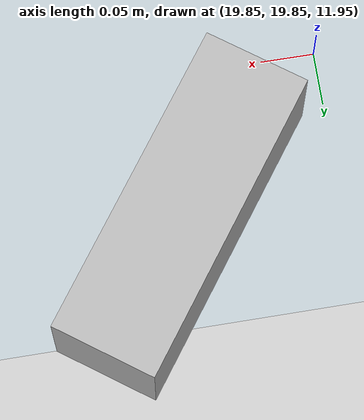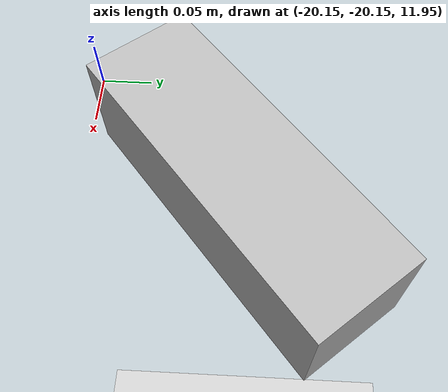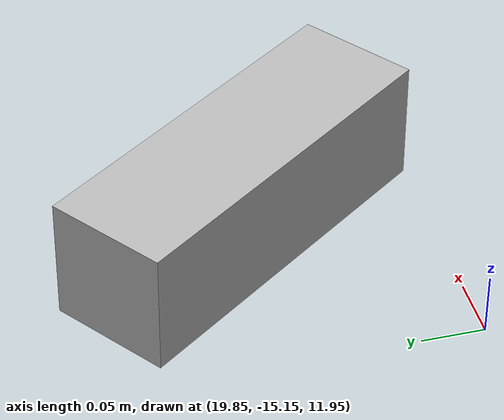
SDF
<sdf version="1.7">
 <world name="default">
  <scene>
   <ambient>0.4 0.4 0.4 1</ambient>
   <background>0.7 0.7 0.7 1</background>
   <shadows>1</shadows>
   <sky><clouds><speed>12</speed></clouds></sky>
   <fog><type>linear</type><start>10</start><end>500</end><density>1</density></fog>
  </scene>
  <include><uri>model://ground_plane</uri></include>
  <include><uri>model://sun</uri></include>
  <model name="camera_0">
   <static>true</static>
   <pose>20 20 12 0 0 -2.2</pose>
   <link name="link">
    <visual name="visual"><geometry><box><size>0.3 0.1 0.1</size></box></geometry></visual>
    <sensor name="camera" type="camera">
     <camera>
      <horizontal_fov>2</horizontal_fov>
      <image><width>2000</width><height>2000</height></image>
      <clip><near>0.1</near><far>100</far></clip>
      <always_on>1</always_on>
      <update_rate>20</update_rate>
      <visualize>1</visualize>
      <save enabled="false"><path>../frames/camera0</path></save>
      <lens><type>stereographic</type><scale_to_hfov>1</scale_to_hfov><cutoff_angle>2</cutoff_angle></lens>
     </camera>
     <plugin name="camera_controller" filename="libgazebo_ros_camera.so">
      <alwaysOn>true</alwaysOn>
      <updateRate>20.0</updateRate>
      <cameraName>camera_0</cameraName>
      <imageTopicName>image_raw</imageTopicName>
      <cameraInfoTopicName>camera_0_info</cameraInfoTopicName>
      <frameName>link</frameName>
      <hackBaseline>0.07</hackBaseline>
      <distortionK1>0.0</distortionK1>
      <distortionK2>0.0</distortionK2>
      <distortionK3>0.0</distortionK3>
      <distortionT1>0.0</distortionT1>
      <distortionT2>0.0</distortionT2>
     </plugin>
    </sensor>
   </link>
  </model>
  <model name="camera_1">
   <static>true</static>
   <pose>20 -15 12 0 0 2.2</pose>
   <link name="link">
    <visual name="visual"><geometry><box><size>0.3 0.1 0.1</size></box></geometry></visual>
    <sensor name="camera" type="camera">
     <camera>
      <horizontal_fov>2</horizontal_fov>
      <image><width>2000</width><height>2000</height></image>
      <clip><near>0.1</near><far>100</far></clip>
      <always_on>1</always_on>
      <update_rate>20</update_rate>
      <visualize>1</visualize>
      <save enabled="false"><path>../frames/camera1</path></save>
      <lens><type>stereographic</type><scale_to_hfov>1</scale_to_hfov><cutoff_angle>2</cutoff_angle></lens>
     </camera>
     <plugin name="camera_controller" filename="libgazebo_ros_camera.so">
      <alwaysOn>true</alwaysOn>
      <updateRate>20.0</updateRate>
      <cameraName>camera_1</cameraName>
      <imageTopicName>image_raw</imageTopicName>
      <cameraInfoTopicName>camera_1_info</cameraInfoTopicName>
      <frameName>link</frameName>
      <hackBaseline>0.07</hackBaseline>
      <distortionK1>0.0</distortionK1>
      <distortionK2>0.0</distortionK2>
      <distortionK3>0.0</distortionK3>
      <distortionT1>0.0</distortionT1>
      <distortionT2>0.0</distortionT2>
     </plugin>
    </sensor>
   </link>
  </model>
  <model name="camera_2">
   <static>true</static>
   <pose>-20 -20 12 0 0 0.7</pose>
   <link name="link">
    <visual name="visual"><geometry><box><size>0.3 0.1 0.1</size></box></geometry></visual>
    <sensor name="camera" type="camera">
     <camera>
      <horizontal_fov>2</horizontal_fov>
      <image><width>2000</width><height>2000</height></image>
      <clip><near>0.1</near><far>100</far></clip>
      <always_on>1</always_on>
      <update_rate>20</update_rate>
      <visualize>1</visualize>
      <save enabled="false"><path>../frames/camera_2</path></save>
      <lens><type>stereographic</type><scale_to_hfov>1</scale_to_hfov><cutoff_angle>2</cutoff_angle></lens>
     </camera>
     <plugin name="camera_controller" filename="libgazebo_ros_camera.so">
      <alwaysOn>true</alwaysOn>
      <updateRate>20.0</updateRate>
      <cameraName>camera_2</cameraName>
      <imageTopicName>image_raw</imageTopicName>
      <cameraInfoTopicName>camera_2_info</cameraInfoTopicName>
      <frameName>link</frameName>
      <hackBaseline>0.07</hackBaseline>
      <distortionK1>0.0</distortionK1>
      <distortionK2>0.0</distortionK2>
      <distortionK3>0.0</distortionK3>
      <distortionT1>0.0</distortionT1>
      <distortionT2>0.0</distortionT2>
     </plugin>
    </sensor>
   </link>
  </model>
  <model name="camera_3">
   <static>true</static>
   <pose>-20 20 12 0 0 -0.7</pose>
   <link name="link">
    <visual name="visual"><geometry><box><size>0.3 0.1 0.1</size></box></geometry></visual>
    <sensor name="camera" type="camera">
     <camera>
      <horizontal_fov>2</horizontal_fov>
      <image><width>2000</width><height>2000</height></image>
      <clip><near>0.1</near><far>100</far></clip>
      <always_on>1</always_on>
      <update_rate>20</update_rate>
      <visualize>1</visualize>
      <save enabled="false"><path>../frames/camera_3</path></save>
      <lens><type>stereographic</type><scale_to_hfov>1</scale_to_hfov><cutoff_angle>2</cutoff_angle></lens>
     </camera>
     <plugin name="camera_controller" filename="libgazebo_ros_camera.so">
      <alwaysOn>true</alwaysOn>
      <updateRate>20.0</updateRate>
      <cameraName>camera_3</cameraName>
      <imageTopicName>image_raw</imageTopicName>
      <cameraInfoTopicName>camera_3_info</cameraInfoTopicName>
      <frameName>link</frameName>
      <hackBaseline>0.07</hackBaseline>
      <distortionK1>0.0</distortionK1>
      <distortionK2>0.0</distortionK2>
      <distortionK3>0.0</distortionK3>
      <distortionT1>0.0</distortionT1>
      <distortionT2>0.0</distortionT2>
     </plugin>
    </sensor>
   </link>
  </model>
  <model name="bird">
   <pose>0 0 10 0 0 0</pose>
   <link name="bird_body">
    <visual name="bird_visual">
     <geometry><mesh><uri>../models/Eagle.dae</uri><scale>1 1 1</scale></mesh></geometry>
     <material>
      <ambient>1 0.1 0.1 1</ambient>
      <diffuse>1 0.1 0.2 1</diffuse>
      <specular>1 0 0 0</specular>
      <emissive>0.5 0 0 1</emissive>
     </material>
    </visual>
    <collision name="bird_collision"><geometry><box><size>1 1 1</size></box></geometry></collision>
   </link>
  </model>
 </world>
</sdf>
